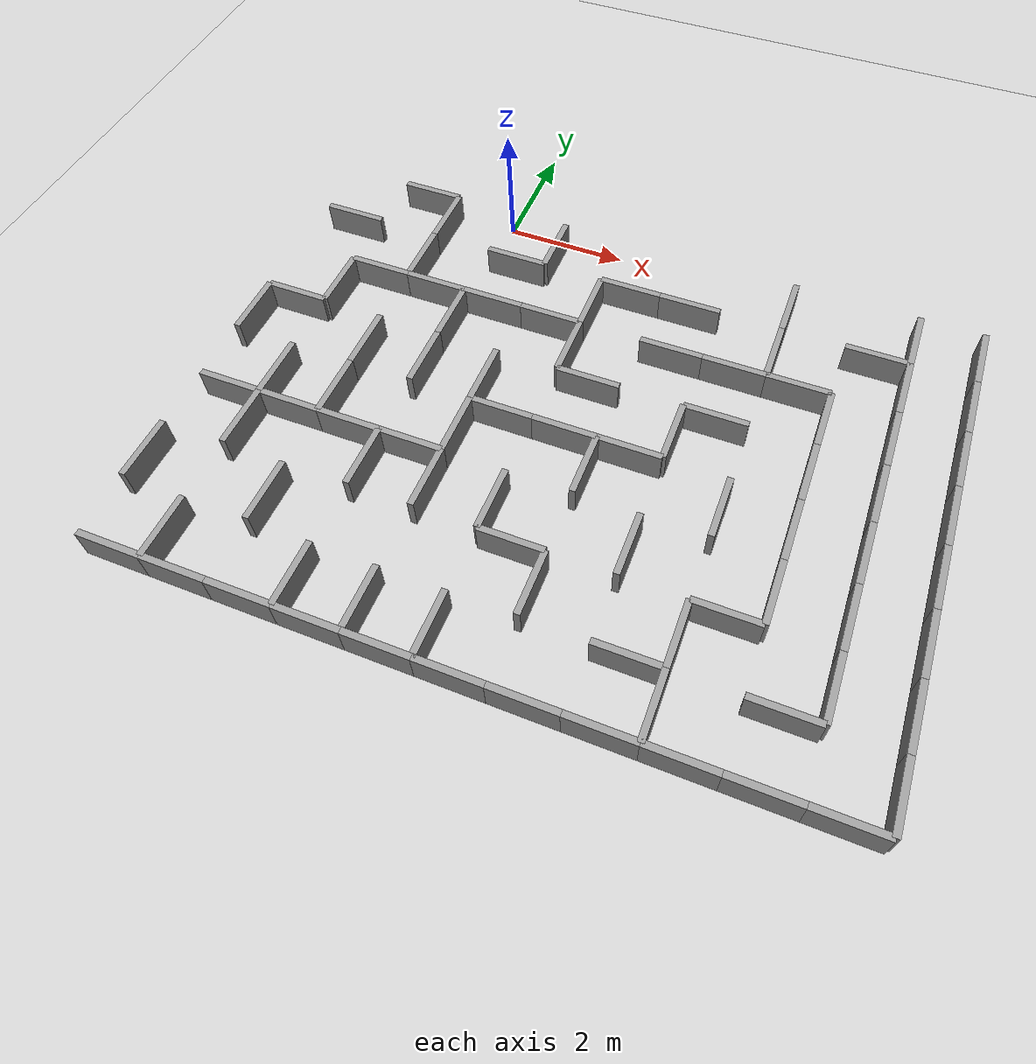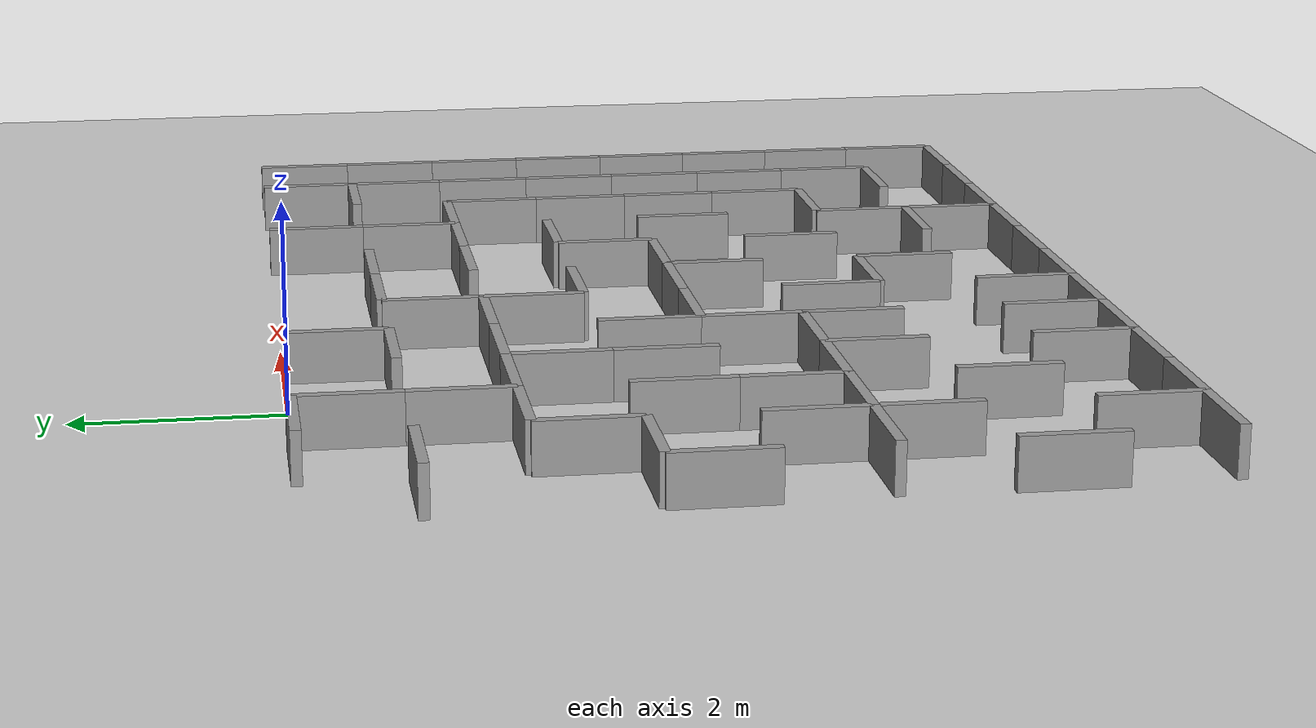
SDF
<sdf version="1.7">
 <world name="maze_world">
  <include><uri>model://sun</uri></include>
  <include><uri>model://ground_plane</uri></include>
  <model name="wall_130">
   <static>true</static>
   <pose>-1.5 0.0 0.25 0 0 0</pose>
   <link name="link">
    <collision name="collision"><geometry><box><size>1.0 0.1 0.5</size></box></geometry></collision>
    <visual name="visual">
     <geometry><box><size>1.0 0.1 0.5</size></box></geometry>
     <material>
      <script><uri>file://media/materials/scripts/gazebo.material</uri><name>Gazebo/Grey</name></script>
     </material>
    </visual>
   </link>
  </model>
  <model name="wall_140">
   <static>true</static>
   <pose>-1.0 -0.5 0.25 0 0 1.5707963267948966</pose>
   <link name="link">
    <collision name="collision"><geometry><box><size>1.0 0.1 0.5</size></box></geometry></collision>
    <visual name="visual">
     <geometry><box><size>1.0 0.1 0.5</size></box></geometry>
     <material>
      <script><uri>file://media/materials/scripts/gazebo.material</uri><name>Gazebo/Grey</name></script>
     </material>
    </visual>
   </link>
  </model>
  <model name="wall_141">
   <static>true</static>
   <pose>1.0 -0.5 0.25 0 0 1.5707963267948966</pose>
   <link name="link">
    <collision name="collision"><geometry><box><size>1.0 0.1 0.5</size></box></geometry></collision>
    <visual name="visual">
     <geometry><box><size>1.0 0.1 0.5</size></box></geometry>
     <material>
      <script><uri>file://media/materials/scripts/gazebo.material</uri><name>Gazebo/Grey</name></script>
     </material>
    </visual>
   </link>
  </model>
  <model name="wall_142">
   <static>true</static>
   <pose>5.0 -0.5 0.25 0 0 1.5707963267948966</pose>
   <link name="link">
    <collision name="collision"><geometry><box><size>1.0 0.1 0.5</size></box></geometry></collision>
    <visual name="visual">
     <geometry><box><size>1.0 0.1 0.5</size></box></geometry>
     <material>
      <script><uri>file://media/materials/scripts/gazebo.material</uri><name>Gazebo/Grey</name></script>
     </material>
    </visual>
   </link>
  </model>
  <model name="wall_143">
   <static>true</static>
   <pose>7.0 -0.5 0.25 0 0 1.5707963267948966</pose>
   <link name="link">
    <collision name="collision"><geometry><box><size>1.0 0.1 0.5</size></box></geometry></collision>
    <visual name="visual">
     <geometry><box><size>1.0 0.1 0.5</size></box></geometry>
     <material>
      <script><uri>file://media/materials/scripts/gazebo.material</uri><name>Gazebo/Grey</name></script>
     </material>
    </visual>
   </link>
  </model>
  <model name="wall_144">
   <static>true</static>
   <pose>8.0 -0.5 0.25 0 0 1.5707963267948966</pose>
   <link name="link">
    <collision name="collision"><geometry><box><size>1.0 0.1 0.5</size></box></geometry></collision>
    <visual name="visual">
     <geometry><box><size>1.0 0.1 0.5</size></box></geometry>
     <material>
      <script><uri>file://media/materials/scripts/gazebo.material</uri><name>Gazebo/Grey</name></script>
     </material>
    </visual>
   </link>
  </model>
  <model name="wall_146">
   <static>true</static>
   <pose>-2.5 -1.0 0.25 0 0 0</pose>
   <link name="link">
    <collision name="collision"><geometry><box><size>1.0 0.1 0.5</size></box></geometry></collision>
    <visual name="visual">
     <geometry><box><size>1.0 0.1 0.5</size></box></geometry>
     <material>
      <script><uri>file://media/materials/scripts/gazebo.material</uri><name>Gazebo/Grey</name></script>
     </material>
    </visual>
   </link>
  </model>
  <model name="wall_147">
   <static>true</static>
   <pose>0.5 -1.0 0.25 0 0 0</pose>
   <link name="link">
    <collision name="collision"><geometry><box><size>1.0 0.1 0.5</size></box></geometry></collision>
    <visual name="visual">
     <geometry><box><size>1.0 0.1 0.5</size></box></geometry>
     <material>
      <script><uri>file://media/materials/scripts/gazebo.material</uri><name>Gazebo/Grey</name></script>
     </material>
    </visual>
   </link>
  </model>
  <model name="wall_148">
   <static>true</static>
   <pose>2.5 -1.0 0.25 0 0 0</pose>
   <link name="link">
    <collision name="collision"><geometry><box><size>1.0 0.1 0.5</size></box></geometry></collision>
    <visual name="visual">
     <geometry><box><size>1.0 0.1 0.5</size></box></geometry>
     <material>
      <script><uri>file://media/materials/scripts/gazebo.material</uri><name>Gazebo/Grey</name></script>
     </material>
    </visual>
   </link>
  </model>
  <model name="wall_149">
   <static>true</static>
   <pose>3.5 -1.0 0.25 0 0 0</pose>
   <link name="link">
    <collision name="collision"><geometry><box><size>1.0 0.1 0.5</size></box></geometry></collision>
    <visual name="visual">
     <geometry><box><size>1.0 0.1 0.5</size></box></geometry>
     <material>
      <script><uri>file://media/materials/scripts/gazebo.material</uri><name>Gazebo/Grey</name></script>
     </material>
    </visual>
   </link>
  </model>
  <model name="wall_150">
   <static>true</static>
   <pose>6.5 -1.0 0.25 0 0 0</pose>
   <link name="link">
    <collision name="collision"><geometry><box><size>1.0 0.1 0.5</size></box></geometry></collision>
    <visual name="visual">
     <geometry><box><size>1.0 0.1 0.5</size></box></geometry>
     <material>
      <script><uri>file://media/materials/scripts/gazebo.material</uri><name>Gazebo/Grey</name></script>
     </material>
    </visual>
   </link>
  </model>
  <model name="wall_156">
   <static>true</static>
   <pose>-1.0 -1.5 0.25 0 0 1.5707963267948966</pose>
   <link name="link">
    <collision name="collision"><geometry><box><size>1.0 0.1 0.5</size></box></geometry></collision>
    <visual name="visual">
     <geometry><box><size>1.0 0.1 0.5</size></box></geometry>
     <material>
      <script><uri>file://media/materials/scripts/gazebo.material</uri><name>Gazebo/Grey</name></script>
     </material>
    </visual>
   </link>
  </model>
  <model name="wall_157">
   <static>true</static>
   <pose>2.0 -1.5 0.25 0 0 1.5707963267948966</pose>
   <link name="link">
    <collision name="collision"><geometry><box><size>1.0 0.1 0.5</size></box></geometry></collision>
    <visual name="visual">
     <geometry><box><size>1.0 0.1 0.5</size></box></geometry>
     <material>
      <script><uri>file://media/materials/scripts/gazebo.material</uri><name>Gazebo/Grey</name></script>
     </material>
    </visual>
   </link>
  </model>
  <model name="wall_158">
   <static>true</static>
   <pose>5.0 -1.5 0.25 0 0 1.5707963267948966</pose>
   <link name="link">
    <collision name="collision"><geometry><box><size>1.0 0.1 0.5</size></box></geometry></collision>
    <visual name="visual">
     <geometry><box><size>1.0 0.1 0.5</size></box></geometry>
     <material>
      <script><uri>file://media/materials/scripts/gazebo.material</uri><name>Gazebo/Grey</name></script>
     </material>
    </visual>
   </link>
  </model>
  <model name="wall_159">
   <static>true</static>
   <pose>7.0 -1.5 0.25 0 0 1.5707963267948966</pose>
   <link name="link">
    <collision name="collision"><geometry><box><size>1.0 0.1 0.5</size></box></geometry></collision>
    <visual name="visual">
     <geometry><box><size>1.0 0.1 0.5</size></box></geometry>
     <material>
      <script><uri>file://media/materials/scripts/gazebo.material</uri><name>Gazebo/Grey</name></script>
     </material>
    </visual>
   </link>
  </model>
  <model name="wall_160">
   <static>true</static>
   <pose>8.0 -1.5 0.25 0 0 1.5707963267948966</pose>
   <link name="link">
    <collision name="collision"><geometry><box><size>1.0 0.1 0.5</size></box></geometry></collision>
    <visual name="visual">
     <geometry><box><size>1.0 0.1 0.5</size></box></geometry>
     <material>
      <script><uri>file://media/materials/scripts/gazebo.material</uri><name>Gazebo/Grey</name></script>
     </material>
    </visual>
   </link>
  </model>
  <model name="wall_162">
   <static>true</static>
   <pose>-1.5 -2.0 0.25 0 0 0</pose>
   <link name="link">
    <collision name="collision"><geometry><box><size>1.0 0.1 0.5</size></box></geometry></collision>
    <visual name="visual">
     <geometry><box><size>1.0 0.1 0.5</size></box></geometry>
     <material>
      <script><uri>file://media/materials/scripts/gazebo.material</uri><name>Gazebo/Grey</name></script>
     </material>
    </visual>
   </link>
  </model>
  <model name="wall_163">
   <static>true</static>
   <pose>-0.5 -2.0 0.25 0 0 0</pose>
   <link name="link">
    <collision name="collision"><geometry><box><size>1.0 0.1 0.5</size></box></geometry></collision>
    <visual name="visual">
     <geometry><box><size>1.0 0.1 0.5</size></box></geometry>
     <material>
      <script><uri>file://media/materials/scripts/gazebo.material</uri><name>Gazebo/Grey</name></script>
     </material>
    </visual>
   </link>
  </model>
  <model name="wall_164">
   <static>true</static>
   <pose>0.5 -2.0 0.25 0 0 0</pose>
   <link name="link">
    <collision name="collision"><geometry><box><size>1.0 0.1 0.5</size></box></geometry></collision>
    <visual name="visual">
     <geometry><box><size>1.0 0.1 0.5</size></box></geometry>
     <material>
      <script><uri>file://media/materials/scripts/gazebo.material</uri><name>Gazebo/Grey</name></script>
     </material>
    </visual>
   </link>
  </model>
  <model name="wall_165">
   <static>true</static>
   <pose>1.5 -2.0 0.25 0 0 0</pose>
   <link name="link">
    <collision name="collision"><geometry><box><size>1.0 0.1 0.5</size></box></geometry></collision>
    <visual name="visual">
     <geometry><box><size>1.0 0.1 0.5</size></box></geometry>
     <material>
      <script><uri>file://media/materials/scripts/gazebo.material</uri><name>Gazebo/Grey</name></script>
     </material>
    </visual>
   </link>
  </model>
  <model name="wall_166">
   <static>true</static>
   <pose>3.5 -2.0 0.25 0 0 0</pose>
   <link name="link">
    <collision name="collision"><geometry><box><size>1.0 0.1 0.5</size></box></geometry></collision>
    <visual name="visual">
     <geometry><box><size>1.0 0.1 0.5</size></box></geometry>
     <material>
      <script><uri>file://media/materials/scripts/gazebo.material</uri><name>Gazebo/Grey</name></script>
     </material>
    </visual>
   </link>
  </model>
  <model name="wall_167">
   <static>true</static>
   <pose>4.5 -2.0 0.25 0 0 0</pose>
   <link name="link">
    <collision name="collision"><geometry><box><size>1.0 0.1 0.5</size></box></geometry></collision>
    <visual name="visual">
     <geometry><box><size>1.0 0.1 0.5</size></box></geometry>
     <material>
      <script><uri>file://media/materials/scripts/gazebo.material</uri><name>Gazebo/Grey</name></script>
     </material>
    </visual>
   </link>
  </model>
  <model name="wall_168">
   <static>true</static>
   <pose>5.5 -2.0 0.25 0 0 0</pose>
   <link name="link">
    <collision name="collision"><geometry><box><size>1.0 0.1 0.5</size></box></geometry></collision>
    <visual name="visual">
     <geometry><box><size>1.0 0.1 0.5</size></box></geometry>
     <material>
      <script><uri>file://media/materials/scripts/gazebo.material</uri><name>Gazebo/Grey</name></script>
     </material>
    </visual>
   </link>
  </model>
  <model name="wall_173">
   <static>true</static>
   <pose>-2.0 -2.5 0.25 0 0 1.5707963267948966</pose>
   <link name="link">
    <collision name="collision"><geometry><box><size>1.0 0.1 0.5</size></box></geometry></collision>
    <visual name="visual">
     <geometry><box><size>1.0 0.1 0.5</size></box></geometry>
     <material>
      <script><uri>file://media/materials/scripts/gazebo.material</uri><name>Gazebo/Grey</name></script>
     </material>
    </visual>
   </link>
  </model>
  <model name="wall_174">
   <static>true</static>
   <pose>0.0 -2.5 0.25 0 0 1.5707963267948966</pose>
   <link name="link">
    <collision name="collision"><geometry><box><size>1.0 0.1 0.5</size></box></geometry></collision>
    <visual name="visual">
     <geometry><box><size>1.0 0.1 0.5</size></box></geometry>
     <material>
      <script><uri>file://media/materials/scripts/gazebo.material</uri><name>Gazebo/Grey</name></script>
     </material>
    </visual>
   </link>
  </model>
  <model name="wall_175">
   <static>true</static>
   <pose>2.0 -2.5 0.25 0 0 1.5707963267948966</pose>
   <link name="link">
    <collision name="collision"><geometry><box><size>1.0 0.1 0.5</size></box></geometry></collision>
    <visual name="visual">
     <geometry><box><size>1.0 0.1 0.5</size></box></geometry>
     <material>
      <script><uri>file://media/materials/scripts/gazebo.material</uri><name>Gazebo/Grey</name></script>
     </material>
    </visual>
   </link>
  </model>
  <model name="wall_176">
   <static>true</static>
   <pose>6.0 -2.5 0.25 0 0 1.5707963267948966</pose>
   <link name="link">
    <collision name="collision"><geometry><box><size>1.0 0.1 0.5</size></box></geometry></collision>
    <visual name="visual">
     <geometry><box><size>1.0 0.1 0.5</size></box></geometry>
     <material>
      <script><uri>file://media/materials/scripts/gazebo.material</uri><name>Gazebo/Grey</name></script>
     </material>
    </visual>
   </link>
  </model>
  <model name="wall_177">
   <static>true</static>
   <pose>7.0 -2.5 0.25 0 0 1.5707963267948966</pose>
   <link name="link">
    <collision name="collision"><geometry><box><size>1.0 0.1 0.5</size></box></geometry></collision>
    <visual name="visual">
     <geometry><box><size>1.0 0.1 0.5</size></box></geometry>
     <material>
      <script><uri>file://media/materials/scripts/gazebo.material</uri><name>Gazebo/Grey</name></script>
     </material>
    </visual>
   </link>
  </model>
  <model name="wall_178">
   <static>true</static>
   <pose>8.0 -2.5 0.25 0 0 1.5707963267948966</pose>
   <link name="link">
    <collision name="collision"><geometry><box><size>1.0 0.1 0.5</size></box></geometry></collision>
    <visual name="visual">
     <geometry><box><size>1.0 0.1 0.5</size></box></geometry>
     <material>
      <script><uri>file://media/materials/scripts/gazebo.material</uri><name>Gazebo/Grey</name></script>
     </material>
    </visual>
   </link>
  </model>
  <model name="wall_180">
   <static>true</static>
   <pose>-2.5 -3.0 0.25 0 0 0</pose>
   <link name="link">
    <collision name="collision"><geometry><box><size>1.0 0.1 0.5</size></box></geometry></collision>
    <visual name="visual">
     <geometry><box><size>1.0 0.1 0.5</size></box></geometry>
     <material>
      <script><uri>file://media/materials/scripts/gazebo.material</uri><name>Gazebo/Grey</name></script>
     </material>
    </visual>
   </link>
  </model>
  <model name="wall_181">
   <static>true</static>
   <pose>2.5 -3.0 0.25 0 0 0</pose>
   <link name="link">
    <collision name="collision"><geometry><box><size>1.0 0.1 0.5</size></box></geometry></collision>
    <visual name="visual">
     <geometry><box><size>1.0 0.1 0.5</size></box></geometry>
     <material>
      <script><uri>file://media/materials/scripts/gazebo.material</uri><name>Gazebo/Grey</name></script>
     </material>
    </visual>
   </link>
  </model>
  <model name="wall_182">
   <static>true</static>
   <pose>4.5 -3.0 0.25 0 0 0</pose>
   <link name="link">
    <collision name="collision"><geometry><box><size>1.0 0.1 0.5</size></box></geometry></collision>
    <visual name="visual">
     <geometry><box><size>1.0 0.1 0.5</size></box></geometry>
     <material>
      <script><uri>file://media/materials/scripts/gazebo.material</uri><name>Gazebo/Grey</name></script>
     </material>
    </visual>
   </link>
  </model>
  <model name="wall_187">
   <static>true</static>
   <pose>-3.0 -3.5 0.25 0 0 1.5707963267948966</pose>
   <link name="link">
    <collision name="collision"><geometry><box><size>1.0 0.1 0.5</size></box></geometry></collision>
    <visual name="visual">
     <geometry><box><size>1.0 0.1 0.5</size></box></geometry>
     <material>
      <script><uri>file://media/materials/scripts/gazebo.material</uri><name>Gazebo/Grey</name></script>
     </material>
    </visual>
   </link>
  </model>
  <model name="wall_188">
   <static>true</static>
   <pose>-1.0 -3.5 0.25 0 0 1.5707963267948966</pose>
   <link name="link">
    <collision name="collision"><geometry><box><size>1.0 0.1 0.5</size></box></geometry></collision>
    <visual name="visual">
     <geometry><box><size>1.0 0.1 0.5</size></box></geometry>
     <material>
      <script><uri>file://media/materials/scripts/gazebo.material</uri><name>Gazebo/Grey</name></script>
     </material>
    </visual>
   </link>
  </model>
  <model name="wall_189">
   <static>true</static>
   <pose>0.0 -3.5 0.25 0 0 1.5707963267948966</pose>
   <link name="link">
    <collision name="collision"><geometry><box><size>1.0 0.1 0.5</size></box></geometry></collision>
    <visual name="visual">
     <geometry><box><size>1.0 0.1 0.5</size></box></geometry>
     <material>
      <script><uri>file://media/materials/scripts/gazebo.material</uri><name>Gazebo/Grey</name></script>
     </material>
    </visual>
   </link>
  </model>
  <model name="wall_190">
   <static>true</static>
   <pose>1.0 -3.5 0.25 0 0 1.5707963267948966</pose>
   <link name="link">
    <collision name="collision"><geometry><box><size>1.0 0.1 0.5</size></box></geometry></collision>
    <visual name="visual">
     <geometry><box><size>1.0 0.1 0.5</size></box></geometry>
     <material>
      <script><uri>file://media/materials/scripts/gazebo.material</uri><name>Gazebo/Grey</name></script>
     </material>
    </visual>
   </link>
  </model>
  <model name="wall_191">
   <static>true</static>
   <pose>4.0 -3.5 0.25 0 0 1.5707963267948966</pose>
   <link name="link">
    <collision name="collision"><geometry><box><size>1.0 0.1 0.5</size></box></geometry></collision>
    <visual name="visual">
     <geometry><box><size>1.0 0.1 0.5</size></box></geometry>
     <material>
      <script><uri>file://media/materials/scripts/gazebo.material</uri><name>Gazebo/Grey</name></script>
     </material>
    </visual>
   </link>
  </model>
  <model name="wall_192">
   <static>true</static>
   <pose>6.0 -3.5 0.25 0 0 1.5707963267948966</pose>
   <link name="link">
    <collision name="collision"><geometry><box><size>1.0 0.1 0.5</size></box></geometry></collision>
    <visual name="visual">
     <geometry><box><size>1.0 0.1 0.5</size></box></geometry>
     <material>
      <script><uri>file://media/materials/scripts/gazebo.material</uri><name>Gazebo/Grey</name></script>
     </material>
    </visual>
   </link>
  </model>
  <model name="wall_193">
   <static>true</static>
   <pose>7.0 -3.5 0.25 0 0 1.5707963267948966</pose>
   <link name="link">
    <collision name="collision"><geometry><box><size>1.0 0.1 0.5</size></box></geometry></collision>
    <visual name="visual">
     <geometry><box><size>1.0 0.1 0.5</size></box></geometry>
     <material>
      <script><uri>file://media/materials/scripts/gazebo.material</uri><name>Gazebo/Grey</name></script>
     </material>
    </visual>
   </link>
  </model>
  <model name="wall_194">
   <static>true</static>
   <pose>8.0 -3.5 0.25 0 0 1.5707963267948966</pose>
   <link name="link">
    <collision name="collision"><geometry><box><size>1.0 0.1 0.5</size></box></geometry></collision>
    <visual name="visual">
     <geometry><box><size>1.0 0.1 0.5</size></box></geometry>
     <material>
      <script><uri>file://media/materials/scripts/gazebo.material</uri><name>Gazebo/Grey</name></script>
     </material>
    </visual>
   </link>
  </model>
  <model name="wall_195">
   <static>true</static>
   <pose>1.5 -4.0 0.25 0 0 0</pose>
   <link name="link">
    <collision name="collision"><geometry><box><size>1.0 0.1 0.5</size></box></geometry></collision>
    <visual name="visual">
     <geometry><box><size>1.0 0.1 0.5</size></box></geometry>
     <material>
      <script><uri>file://media/materials/scripts/gazebo.material</uri><name>Gazebo/Grey</name></script>
     </material>
    </visual>
   </link>
  </model>
  <model name="wall_196">
   <static>true</static>
   <pose>2.5 -4.0 0.25 0 0 0</pose>
   <link name="link">
    <collision name="collision"><geometry><box><size>1.0 0.1 0.5</size></box></geometry></collision>
    <visual name="visual">
     <geometry><box><size>1.0 0.1 0.5</size></box></geometry>
     <material>
      <script><uri>file://media/materials/scripts/gazebo.material</uri><name>Gazebo/Grey</name></script>
     </material>
    </visual>
   </link>
  </model>
  <model name="wall_197">
   <static>true</static>
   <pose>3.5 -4.0 0.25 0 0 0</pose>
   <link name="link">
    <collision name="collision"><geometry><box><size>1.0 0.1 0.5</size></box></geometry></collision>
    <visual name="visual">
     <geometry><box><size>1.0 0.1 0.5</size></box></geometry>
     <material>
      <script><uri>file://media/materials/scripts/gazebo.material</uri><name>Gazebo/Grey</name></script>
     </material>
    </visual>
   </link>
  </model>
  <model name="wall_203">
   <static>true</static>
   <pose>-2.0 -4.5 0.25 0 0 1.5707963267948966</pose>
   <link name="link">
    <collision name="collision"><geometry><box><size>1.0 0.1 0.5</size></box></geometry></collision>
    <visual name="visual">
     <geometry><box><size>1.0 0.1 0.5</size></box></geometry>
     <material>
      <script><uri>file://media/materials/scripts/gazebo.material</uri><name>Gazebo/Grey</name></script>
     </material>
    </visual>
   </link>
  </model>
  <model name="wall_204">
   <static>true</static>
   <pose>-1.0 -4.5 0.25 0 0 1.5707963267948966</pose>
   <link name="link">
    <collision name="collision"><geometry><box><size>1.0 0.1 0.5</size></box></geometry></collision>
    <visual name="visual">
     <geometry><box><size>1.0 0.1 0.5</size></box></geometry>
     <material>
      <script><uri>file://media/materials/scripts/gazebo.material</uri><name>Gazebo/Grey</name></script>
     </material>
    </visual>
   </link>
  </model>
  <model name="wall_205">
   <static>true</static>
   <pose>1.0 -4.5 0.25 0 0 1.5707963267948966</pose>
   <link name="link">
    <collision name="collision"><geometry><box><size>1.0 0.1 0.5</size></box></geometry></collision>
    <visual name="visual">
     <geometry><box><size>1.0 0.1 0.5</size></box></geometry>
     <material>
      <script><uri>file://media/materials/scripts/gazebo.material</uri><name>Gazebo/Grey</name></script>
     </material>
    </visual>
   </link>
  </model>
  <model name="wall_206">
   <static>true</static>
   <pose>3.0 -4.5 0.25 0 0 1.5707963267948966</pose>
   <link name="link">
    <collision name="collision"><geometry><box><size>1.0 0.1 0.5</size></box></geometry></collision>
    <visual name="visual">
     <geometry><box><size>1.0 0.1 0.5</size></box></geometry>
     <material>
      <script><uri>file://media/materials/scripts/gazebo.material</uri><name>Gazebo/Grey</name></script>
     </material>
    </visual>
   </link>
  </model>
  <model name="wall_207">
   <static>true</static>
   <pose>5.0 -4.5 0.25 0 0 1.5707963267948966</pose>
   <link name="link">
    <collision name="collision"><geometry><box><size>1.0 0.1 0.5</size></box></geometry></collision>
    <visual name="visual">
     <geometry><box><size>1.0 0.1 0.5</size></box></geometry>
     <material>
      <script><uri>file://media/materials/scripts/gazebo.material</uri><name>Gazebo/Grey</name></script>
     </material>
    </visual>
   </link>
  </model>
  <model name="wall_208">
   <static>true</static>
   <pose>6.0 -4.5 0.25 0 0 1.5707963267948966</pose>
   <link name="link">
    <collision name="collision"><geometry><box><size>1.0 0.1 0.5</size></box></geometry></collision>
    <visual name="visual">
     <geometry><box><size>1.0 0.1 0.5</size></box></geometry>
     <material>
      <script><uri>file://media/materials/scripts/gazebo.material</uri><name>Gazebo/Grey</name></script>
     </material>
    </visual>
   </link>
  </model>
  <model name="wall_209">
   <static>true</static>
   <pose>7.0 -4.5 0.25 0 0 1.5707963267948966</pose>
   <link name="link">
    <collision name="collision"><geometry><box><size>1.0 0.1 0.5</size></box></geometry></collision>
    <visual name="visual">
     <geometry><box><size>1.0 0.1 0.5</size></box></geometry>
     <material>
      <script><uri>file://media/materials/scripts/gazebo.material</uri><name>Gazebo/Grey</name></script>
     </material>
    </visual>
   </link>
  </model>
  <model name="wall_210">
   <static>true</static>
   <pose>8.0 -4.5 0.25 0 0 1.5707963267948966</pose>
   <link name="link">
    <collision name="collision"><geometry><box><size>1.0 0.1 0.5</size></box></geometry></collision>
    <visual name="visual">
     <geometry><box><size>1.0 0.1 0.5</size></box></geometry>
     <material>
      <script><uri>file://media/materials/scripts/gazebo.material</uri><name>Gazebo/Grey</name></script>
     </material>
    </visual>
   </link>
  </model>
  <model name="wall_213">
   <static>true</static>
   <pose>-2.5 -5.0 0.25 0 0 0</pose>
   <link name="link">
    <collision name="collision"><geometry><box><size>1.0 0.1 0.5</size></box></geometry></collision>
    <visual name="visual">
     <geometry><box><size>1.0 0.1 0.5</size></box></geometry>
     <material>
      <script><uri>file://media/materials/scripts/gazebo.material</uri><name>Gazebo/Grey</name></script>
     </material>
    </visual>
   </link>
  </model>
  <model name="wall_214">
   <static>true</static>
   <pose>-1.5 -5.0 0.25 0 0 0</pose>
   <link name="link">
    <collision name="collision"><geometry><box><size>1.0 0.1 0.5</size></box></geometry></collision>
    <visual name="visual">
     <geometry><box><size>1.0 0.1 0.5</size></box></geometry>
     <material>
      <script><uri>file://media/materials/scripts/gazebo.material</uri><name>Gazebo/Grey</name></script>
     </material>
    </visual>
   </link>
  </model>
  <model name="wall_215">
   <static>true</static>
   <pose>-0.5 -5.0 0.25 0 0 0</pose>
   <link name="link">
    <collision name="collision"><geometry><box><size>1.0 0.1 0.5</size></box></geometry></collision>
    <visual name="visual">
     <geometry><box><size>1.0 0.1 0.5</size></box></geometry>
     <material>
      <script><uri>file://media/materials/scripts/gazebo.material</uri><name>Gazebo/Grey</name></script>
     </material>
    </visual>
   </link>
  </model>
  <model name="wall_216">
   <static>true</static>
   <pose>0.5 -5.0 0.25 0 0 0</pose>
   <link name="link">
    <collision name="collision"><geometry><box><size>1.0 0.1 0.5</size></box></geometry></collision>
    <visual name="visual">
     <geometry><box><size>1.0 0.1 0.5</size></box></geometry>
     <material>
      <script><uri>file://media/materials/scripts/gazebo.material</uri><name>Gazebo/Grey</name></script>
     </material>
    </visual>
   </link>
  </model>
  <model name="wall_222">
   <static>true</static>
   <pose>-2.0 -5.5 0.25 0 0 1.5707963267948966</pose>
   <link name="link">
    <collision name="collision"><geometry><box><size>1.0 0.1 0.5</size></box></geometry></collision>
    <visual name="visual">
     <geometry><box><size>1.0 0.1 0.5</size></box></geometry>
     <material>
      <script><uri>file://media/materials/scripts/gazebo.material</uri><name>Gazebo/Grey</name></script>
     </material>
    </visual>
   </link>
  </model>
  <model name="wall_223">
   <static>true</static>
   <pose>0.0 -5.5 0.25 0 0 1.5707963267948966</pose>
   <link name="link">
    <collision name="collision"><geometry><box><size>1.0 0.1 0.5</size></box></geometry></collision>
    <visual name="visual">
     <geometry><box><size>1.0 0.1 0.5</size></box></geometry>
     <material>
      <script><uri>file://media/materials/scripts/gazebo.material</uri><name>Gazebo/Grey</name></script>
     </material>
    </visual>
   </link>
  </model>
  <model name="wall_224">
   <static>true</static>
   <pose>1.0 -5.5 0.25 0 0 1.5707963267948966</pose>
   <link name="link">
    <collision name="collision"><geometry><box><size>1.0 0.1 0.5</size></box></geometry></collision>
    <visual name="visual">
     <geometry><box><size>1.0 0.1 0.5</size></box></geometry>
     <material>
      <script><uri>file://media/materials/scripts/gazebo.material</uri><name>Gazebo/Grey</name></script>
     </material>
    </visual>
   </link>
  </model>
  <model name="wall_225">
   <static>true</static>
   <pose>2.0 -5.5 0.25 0 0 1.5707963267948966</pose>
   <link name="link">
    <collision name="collision"><geometry><box><size>1.0 0.1 0.5</size></box></geometry></collision>
    <visual name="visual">
     <geometry><box><size>1.0 0.1 0.5</size></box></geometry>
     <material>
      <script><uri>file://media/materials/scripts/gazebo.material</uri><name>Gazebo/Grey</name></script>
     </material>
    </visual>
   </link>
  </model>
  <model name="wall_226">
   <static>true</static>
   <pose>4.0 -5.5 0.25 0 0 1.5707963267948966</pose>
   <link name="link">
    <collision name="collision"><geometry><box><size>1.0 0.1 0.5</size></box></geometry></collision>
    <visual name="visual">
     <geometry><box><size>1.0 0.1 0.5</size></box></geometry>
     <material>
      <script><uri>file://media/materials/scripts/gazebo.material</uri><name>Gazebo/Grey</name></script>
     </material>
    </visual>
   </link>
  </model>
  <model name="wall_227">
   <static>true</static>
   <pose>6.0 -5.5 0.25 0 0 1.5707963267948966</pose>
   <link name="link">
    <collision name="collision"><geometry><box><size>1.0 0.1 0.5</size></box></geometry></collision>
    <visual name="visual">
     <geometry><box><size>1.0 0.1 0.5</size></box></geometry>
     <material>
      <script><uri>file://media/materials/scripts/gazebo.material</uri><name>Gazebo/Grey</name></script>
     </material>
    </visual>
   </link>
  </model>
  <model name="wall_228">
   <static>true</static>
   <pose>7.0 -5.5 0.25 0 0 1.5707963267948966</pose>
   <link name="link">
    <collision name="collision"><geometry><box><size>1.0 0.1 0.5</size></box></geometry></collision>
    <visual name="visual">
     <geometry><box><size>1.0 0.1 0.5</size></box></geometry>
     <material>
      <script><uri>file://media/materials/scripts/gazebo.material</uri><name>Gazebo/Grey</name></script>
     </material>
    </visual>
   </link>
  </model>
  <model name="wall_229">
   <static>true</static>
   <pose>8.0 -5.5 0.25 0 0 1.5707963267948966</pose>
   <link name="link">
    <collision name="collision"><geometry><box><size>1.0 0.1 0.5</size></box></geometry></collision>
    <visual name="visual">
     <geometry><box><size>1.0 0.1 0.5</size></box></geometry>
     <material>
      <script><uri>file://media/materials/scripts/gazebo.material</uri><name>Gazebo/Grey</name></script>
     </material>
    </visual>
   </link>
  </model>
  <model name="wall_230">
   <static>true</static>
   <pose>2.5 -6.0 0.25 0 0 0</pose>
   <link name="link">
    <collision name="collision"><geometry><box><size>1.0 0.1 0.5</size></box></geometry></collision>
    <visual name="visual">
     <geometry><box><size>1.0 0.1 0.5</size></box></geometry>
     <material>
      <script><uri>file://media/materials/scripts/gazebo.material</uri><name>Gazebo/Grey</name></script>
     </material>
    </visual>
   </link>
  </model>
  <model name="wall_231">
   <static>true</static>
   <pose>5.5 -6.0 0.25 0 0 0</pose>
   <link name="link">
    <collision name="collision"><geometry><box><size>1.0 0.1 0.5</size></box></geometry></collision>
    <visual name="visual">
     <geometry><box><size>1.0 0.1 0.5</size></box></geometry>
     <material>
      <script><uri>file://media/materials/scripts/gazebo.material</uri><name>Gazebo/Grey</name></script>
     </material>
    </visual>
   </link>
  </model>
  <model name="wall_236">
   <static>true</static>
   <pose>-3.0 -6.5 0.25 0 0 1.5707963267948966</pose>
   <link name="link">
    <collision name="collision"><geometry><box><size>1.0 0.1 0.5</size></box></geometry></collision>
    <visual name="visual">
     <geometry><box><size>1.0 0.1 0.5</size></box></geometry>
     <material>
      <script><uri>file://media/materials/scripts/gazebo.material</uri><name>Gazebo/Grey</name></script>
     </material>
    </visual>
   </link>
  </model>
  <model name="wall_237">
   <static>true</static>
   <pose>-1.0 -6.5 0.25 0 0 1.5707963267948966</pose>
   <link name="link">
    <collision name="collision"><geometry><box><size>1.0 0.1 0.5</size></box></geometry></collision>
    <visual name="visual">
     <geometry><box><size>1.0 0.1 0.5</size></box></geometry>
     <material>
      <script><uri>file://media/materials/scripts/gazebo.material</uri><name>Gazebo/Grey</name></script>
     </material>
    </visual>
   </link>
  </model>
  <model name="wall_238">
   <static>true</static>
   <pose>3.0 -6.5 0.25 0 0 1.5707963267948966</pose>
   <link name="link">
    <collision name="collision"><geometry><box><size>1.0 0.1 0.5</size></box></geometry></collision>
    <visual name="visual">
     <geometry><box><size>1.0 0.1 0.5</size></box></geometry>
     <material>
      <script><uri>file://media/materials/scripts/gazebo.material</uri><name>Gazebo/Grey</name></script>
     </material>
    </visual>
   </link>
  </model>
  <model name="wall_239">
   <static>true</static>
   <pose>5.0 -6.5 0.25 0 0 1.5707963267948966</pose>
   <link name="link">
    <collision name="collision"><geometry><box><size>1.0 0.1 0.5</size></box></geometry></collision>
    <visual name="visual">
     <geometry><box><size>1.0 0.1 0.5</size></box></geometry>
     <material>
      <script><uri>file://media/materials/scripts/gazebo.material</uri><name>Gazebo/Grey</name></script>
     </material>
    </visual>
   </link>
  </model>
  <model name="wall_240">
   <static>true</static>
   <pose>7.0 -6.5 0.25 0 0 1.5707963267948966</pose>
   <link name="link">
    <collision name="collision"><geometry><box><size>1.0 0.1 0.5</size></box></geometry></collision>
    <visual name="visual">
     <geometry><box><size>1.0 0.1 0.5</size></box></geometry>
     <material>
      <script><uri>file://media/materials/scripts/gazebo.material</uri><name>Gazebo/Grey</name></script>
     </material>
    </visual>
   </link>
  </model>
  <model name="wall_241">
   <static>true</static>
   <pose>8.0 -6.5 0.25 0 0 1.5707963267948966</pose>
   <link name="link">
    <collision name="collision"><geometry><box><size>1.0 0.1 0.5</size></box></geometry></collision>
    <visual name="visual">
     <geometry><box><size>1.0 0.1 0.5</size></box></geometry>
     <material>
      <script><uri>file://media/materials/scripts/gazebo.material</uri><name>Gazebo/Grey</name></script>
     </material>
    </visual>
   </link>
  </model>
  <model name="wall_242">
   <static>true</static>
   <pose>4.5 -7.0 0.25 0 0 0</pose>
   <link name="link">
    <collision name="collision"><geometry><box><size>1.0 0.1 0.5</size></box></geometry></collision>
    <visual name="visual">
     <geometry><box><size>1.0 0.1 0.5</size></box></geometry>
     <material>
      <script><uri>file://media/materials/scripts/gazebo.material</uri><name>Gazebo/Grey</name></script>
     </material>
    </visual>
   </link>
  </model>
  <model name="wall_243">
   <static>true</static>
   <pose>6.5 -7.0 0.25 0 0 0</pose>
   <link name="link">
    <collision name="collision"><geometry><box><size>1.0 0.1 0.5</size></box></geometry></collision>
    <visual name="visual">
     <geometry><box><size>1.0 0.1 0.5</size></box></geometry>
     <material>
      <script><uri>file://media/materials/scripts/gazebo.material</uri><name>Gazebo/Grey</name></script>
     </material>
    </visual>
   </link>
  </model>
  <model name="wall_247">
   <static>true</static>
   <pose>-2.0 -7.5 0.25 0 0 1.5707963267948966</pose>
   <link name="link">
    <collision name="collision"><geometry><box><size>1.0 0.1 0.5</size></box></geometry></collision>
    <visual name="visual">
     <geometry><box><size>1.0 0.1 0.5</size></box></geometry>
     <material>
      <script><uri>file://media/materials/scripts/gazebo.material</uri><name>Gazebo/Grey</name></script>
     </material>
    </visual>
   </link>
  </model>
  <model name="wall_248">
   <static>true</static>
   <pose>0.0 -7.5 0.25 0 0 1.5707963267948966</pose>
   <link name="link">
    <collision name="collision"><geometry><box><size>1.0 0.1 0.5</size></box></geometry></collision>
    <visual name="visual">
     <geometry><box><size>1.0 0.1 0.5</size></box></geometry>
     <material>
      <script><uri>file://media/materials/scripts/gazebo.material</uri><name>Gazebo/Grey</name></script>
     </material>
    </visual>
   </link>
  </model>
  <model name="wall_249">
   <static>true</static>
   <pose>1.0 -7.5 0.25 0 0 1.5707963267948966</pose>
   <link name="link">
    <collision name="collision"><geometry><box><size>1.0 0.1 0.5</size></box></geometry></collision>
    <visual name="visual">
     <geometry><box><size>1.0 0.1 0.5</size></box></geometry>
     <material>
      <script><uri>file://media/materials/scripts/gazebo.material</uri><name>Gazebo/Grey</name></script>
     </material>
    </visual>
   </link>
  </model>
  <model name="wall_250">
   <static>true</static>
   <pose>2.0 -7.5 0.25 0 0 1.5707963267948966</pose>
   <link name="link">
    <collision name="collision"><geometry><box><size>1.0 0.1 0.5</size></box></geometry></collision>
    <visual name="visual">
     <geometry><box><size>1.0 0.1 0.5</size></box></geometry>
     <material>
      <script><uri>file://media/materials/scripts/gazebo.material</uri><name>Gazebo/Grey</name></script>
     </material>
    </visual>
   </link>
  </model>
  <model name="wall_251">
   <static>true</static>
   <pose>5.0 -7.5 0.25 0 0 1.5707963267948966</pose>
   <link name="link">
    <collision name="collision"><geometry><box><size>1.0 0.1 0.5</size></box></geometry></collision>
    <visual name="visual">
     <geometry><box><size>1.0 0.1 0.5</size></box></geometry>
     <material>
      <script><uri>file://media/materials/scripts/gazebo.material</uri><name>Gazebo/Grey</name></script>
     </material>
    </visual>
   </link>
  </model>
  <model name="wall_252">
   <static>true</static>
   <pose>8.0 -7.5 0.25 0 0 1.5707963267948966</pose>
   <link name="link">
    <collision name="collision"><geometry><box><size>1.0 0.1 0.5</size></box></geometry></collision>
    <visual name="visual">
     <geometry><box><size>1.0 0.1 0.5</size></box></geometry>
     <material>
      <script><uri>file://media/materials/scripts/gazebo.material</uri><name>Gazebo/Grey</name></script>
     </material>
    </visual>
   </link>
  </model>
  <model name="wall_258">
   <static>true</static>
   <pose>-2.5 -8.0 0.25 0 0 0</pose>
   <link name="link">
    <collision name="collision"><geometry><box><size>1.0 0.1 0.5</size></box></geometry></collision>
    <visual name="visual">
     <geometry><box><size>1.0 0.1 0.5</size></box></geometry>
     <material>
      <script><uri>file://media/materials/scripts/gazebo.material</uri><name>Gazebo/Grey</name></script>
     </material>
    </visual>
   </link>
  </model>
  <model name="wall_259">
   <static>true</static>
   <pose>-1.5 -8.0 0.25 0 0 0</pose>
   <link name="link">
    <collision name="collision"><geometry><box><size>1.0 0.1 0.5</size></box></geometry></collision>
    <visual name="visual">
     <geometry><box><size>1.0 0.1 0.5</size></box></geometry>
     <material>
      <script><uri>file://media/materials/scripts/gazebo.material</uri><name>Gazebo/Grey</name></script>
     </material>
    </visual>
   </link>
  </model>
  <model name="wall_260">
   <static>true</static>
   <pose>-0.5 -8.0 0.25 0 0 0</pose>
   <link name="link">
    <collision name="collision"><geometry><box><size>1.0 0.1 0.5</size></box></geometry></collision>
    <visual name="visual">
     <geometry><box><size>1.0 0.1 0.5</size></box></geometry>
     <material>
      <script><uri>file://media/materials/scripts/gazebo.material</uri><name>Gazebo/Grey</name></script>
     </material>
    </visual>
   </link>
  </model>
  <model name="wall_261">
   <static>true</static>
   <pose>0.5 -8.0 0.25 0 0 0</pose>
   <link name="link">
    <collision name="collision"><geometry><box><size>1.0 0.1 0.5</size></box></geometry></collision>
    <visual name="visual">
     <geometry><box><size>1.0 0.1 0.5</size></box></geometry>
     <material>
      <script><uri>file://media/materials/scripts/gazebo.material</uri><name>Gazebo/Grey</name></script>
     </material>
    </visual>
   </link>
  </model>
  <model name="wall_262">
   <static>true</static>
   <pose>1.5 -8.0 0.25 0 0 0</pose>
   <link name="link">
    <collision name="collision"><geometry><box><size>1.0 0.1 0.5</size></box></geometry></collision>
    <visual name="visual">
     <geometry><box><size>1.0 0.1 0.5</size></box></geometry>
     <material>
      <script><uri>file://media/materials/scripts/gazebo.material</uri><name>Gazebo/Grey</name></script>
     </material>
    </visual>
   </link>
  </model>
  <model name="wall_263">
   <static>true</static>
   <pose>2.5 -8.0 0.25 0 0 0</pose>
   <link name="link">
    <collision name="collision"><geometry><box><size>1.0 0.1 0.5</size></box></geometry></collision>
    <visual name="visual">
     <geometry><box><size>1.0 0.1 0.5</size></box></geometry>
     <material>
      <script><uri>file://media/materials/scripts/gazebo.material</uri><name>Gazebo/Grey</name></script>
     </material>
    </visual>
   </link>
  </model>
  <model name="wall_264">
   <static>true</static>
   <pose>3.5 -8.0 0.25 0 0 0</pose>
   <link name="link">
    <collision name="collision"><geometry><box><size>1.0 0.1 0.5</size></box></geometry></collision>
    <visual name="visual">
     <geometry><box><size>1.0 0.1 0.5</size></box></geometry>
     <material>
      <script><uri>file://media/materials/scripts/gazebo.material</uri><name>Gazebo/Grey</name></script>
     </material>
    </visual>
   </link>
  </model>
  <model name="wall_265">
   <static>true</static>
   <pose>4.5 -8.0 0.25 0 0 0</pose>
   <link name="link">
    <collision name="collision"><geometry><box><size>1.0 0.1 0.5</size></box></geometry></collision>
    <visual name="visual">
     <geometry><box><size>1.0 0.1 0.5</size></box></geometry>
     <material>
      <script><uri>file://media/materials/scripts/gazebo.material</uri><name>Gazebo/Grey</name></script>
     </material>
    </visual>
   </link>
  </model>
  <model name="wall_266">
   <static>true</static>
   <pose>5.5 -8.0 0.25 0 0 0</pose>
   <link name="link">
    <collision name="collision"><geometry><box><size>1.0 0.1 0.5</size></box></geometry></collision>
    <visual name="visual">
     <geometry><box><size>1.0 0.1 0.5</size></box></geometry>
     <material>
      <script><uri>file://media/materials/scripts/gazebo.material</uri><name>Gazebo/Grey</name></script>
     </material>
    </visual>
   </link>
  </model>
  <model name="wall_267">
   <static>true</static>
   <pose>6.5 -8.0 0.25 0 0 0</pose>
   <link name="link">
    <collision name="collision"><geometry><box><size>1.0 0.1 0.5</size></box></geometry></collision>
    <visual name="visual">
     <geometry><box><size>1.0 0.1 0.5</size></box></geometry>
     <material>
      <script><uri>file://media/materials/scripts/gazebo.material</uri><name>Gazebo/Grey</name></script>
     </material>
    </visual>
   </link>
  </model>
  <model name="wall_268">
   <static>true</static>
   <pose>7.5 -8.0 0.25 0 0 0</pose>
   <link name="link">
    <collision name="collision"><geometry><box><size>1.0 0.1 0.5</size></box></geometry></collision>
    <visual name="visual">
     <geometry><box><size>1.0 0.1 0.5</size></box></geometry>
     <material>
      <script><uri>file://media/materials/scripts/gazebo.material</uri><name>Gazebo/Grey</name></script>
     </material>
    </visual>
   </link>
  </model>
 </world>
</sdf>
